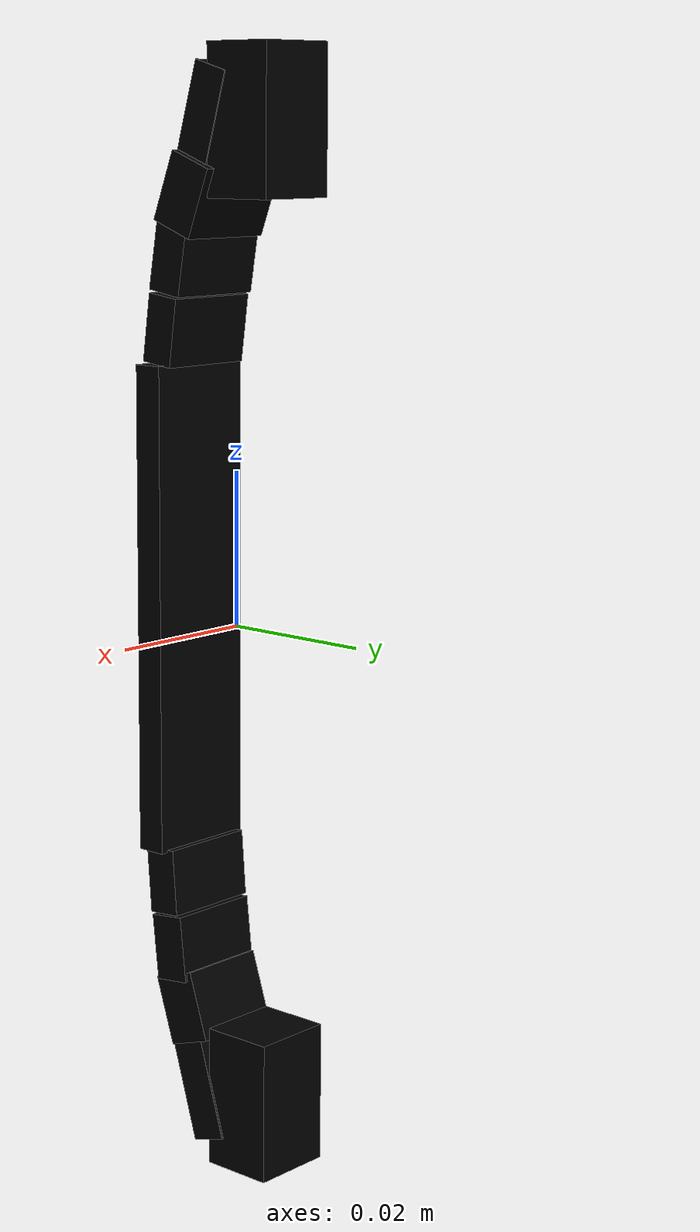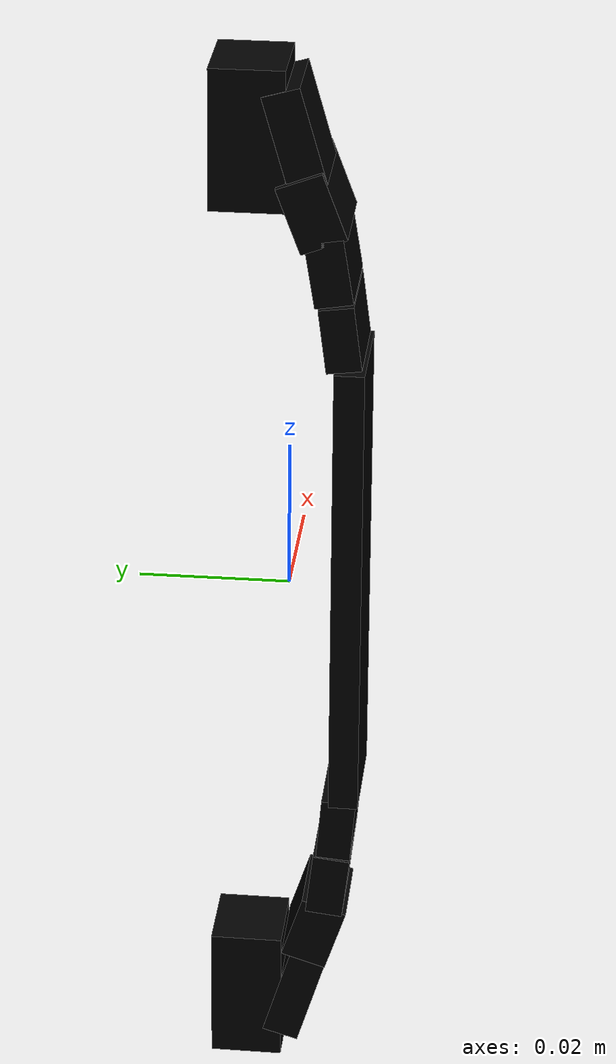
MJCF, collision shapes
<?xml version="1.0" ?>
<mujoco model="model">
    <compiler angle="radian"/>
    <asset>
        <mesh file="visuals/CabinetHandle017.obj" name="mesh"/>
        <texture file="visuals/T_BC001.png" name="tex" type="2d"/>
        <material name="mat" rgba="1 1 1 1.0" texture="tex" shininess="0.5" specular="0.4"/>
    </asset>
    <default>
        <default class="visual">
            <geom conaffinity="0" contype="0" group="1" type="mesh"/>
        </default>
        <default class="collision">
            <geom group="0" rgba="0 0 0 0"/>
        </default>
        <default class="spawn">
            <geom group="0" rgba="0 0 0 0" contype="0" conaffinity="0"/>
            <site group="0" rgba="0 0 0 0"/>
        </default>
    </default>
    <worldbody>
        <body>
            <body name="object">
                <geom mesh="mesh" type="mesh" solimp="0.998 0.998 0.001" solref="0.001 1" density="100" friction="0.95 0.3 0.1" class="visual" material="mat"/>
                <geom class="collision" type="box" pos="-6.701833310529537e-09 0.0051475162617862225 0.06349967420101166" size="0.005572110414505005 0.004846051335334778 0.009338641539216042" quat="1.0 0.0 0.0 0.0" name="handle_connector"/>
                <geom class="collision" type="box" pos="-6.587404843827471e-09 -0.0008518089889548719 0.06373658031225204" size="0.0025142731610685587 0.005719291046261787 0.006568071898072958" quat="0.70014888048172 -0.09895194321870804 0.09895196557044983 0.7001489400863647"/>
                <geom class="collision" type="box" pos="0.000125347709399648 -0.008157478645443916 0.001656876876950264" size="0.007505495101213455 0.0019837121944874525 0.03169005364179611" quat="1.0 0.0 0.0 0.0"/>
                <geom class="collision" type="box" pos="0.00012534763664007187 -0.0068578398786485195 0.0377410463988781" size="0.0023084329441189766 0.006647542119026184 0.004348083399236202" quat="0.7055690884590149 -0.0466068871319294 0.04660686478018761 0.7055692076683044"/>
                <geom class="collision" type="box" pos="0.00012534635607153177 -0.005354592576622963 0.04667448252439499" size="0.0025107450783252716 0.006647542119026184 0.004363759886473417" quat="0.7047508955001831 -0.057673364877700806 0.05767336115241051 0.7047508358955383"/>
                <geom class="collision" type="box" pos="0.00012534510460682213 -0.003091322025284171 0.05454693362116814" size="0.0031621563248336315 0.006647542119026184 0.004581721033900976" quat="0.6953884363174438 -0.12819841504096985 0.12819841504096985 0.6953885555267334"/>
                <geom class="collision" type="box" pos="1.063451460225906e-08 -0.007159640081226826 -0.03416233882308006" size="0.0023084329441189766 0.006647542119026184 0.004348083399236202" quat="0.028458960354328156 -0.7065338492393494 -0.7065338492393494 -0.028458744287490845"/>
                <geom class="collision" type="box" pos="9.264732092617578e-09 -0.006117394659668207 -0.043161217123270035" size="0.002510744845494628 0.006448368076235056 0.004363759886473417" quat="0.03954268991947174 -0.7060002684593201 -0.7060002684593201 -0.039542462676763535"/>
                <geom class="collision" type="box" pos="7.997632778256047e-09 -0.0042616138234734535 -0.05113955959677696" size="0.003162156092002988 0.0061129131354391575 0.004581721965223551" quat="0.11028508096933365 -0.698453426361084 -0.6984534859657288 -0.11028478294610977"/>
                <geom class="collision" type="box" pos="0.00012535700807347894 -0.0015452667139470577 -0.06197208911180496" size="0.0025142731610685587 0.005719291046261787 0.0065680742263793945" quat="0.10309186577796936 -0.6995512843132019 -0.6995514631271362 -0.1030915230512619"/>
                <geom class="collision" type="box" pos="1.0190926325037708e-08 0.0050868084654212 -0.06220926344394684" size="0.005572112742811441 0.0048460522666573524 0.00933864340186119" quat="1.0 0.0 0.0 0.0"/>
            </body>
        </body>
    </worldbody>
    <actuator/>
</mujoco>
